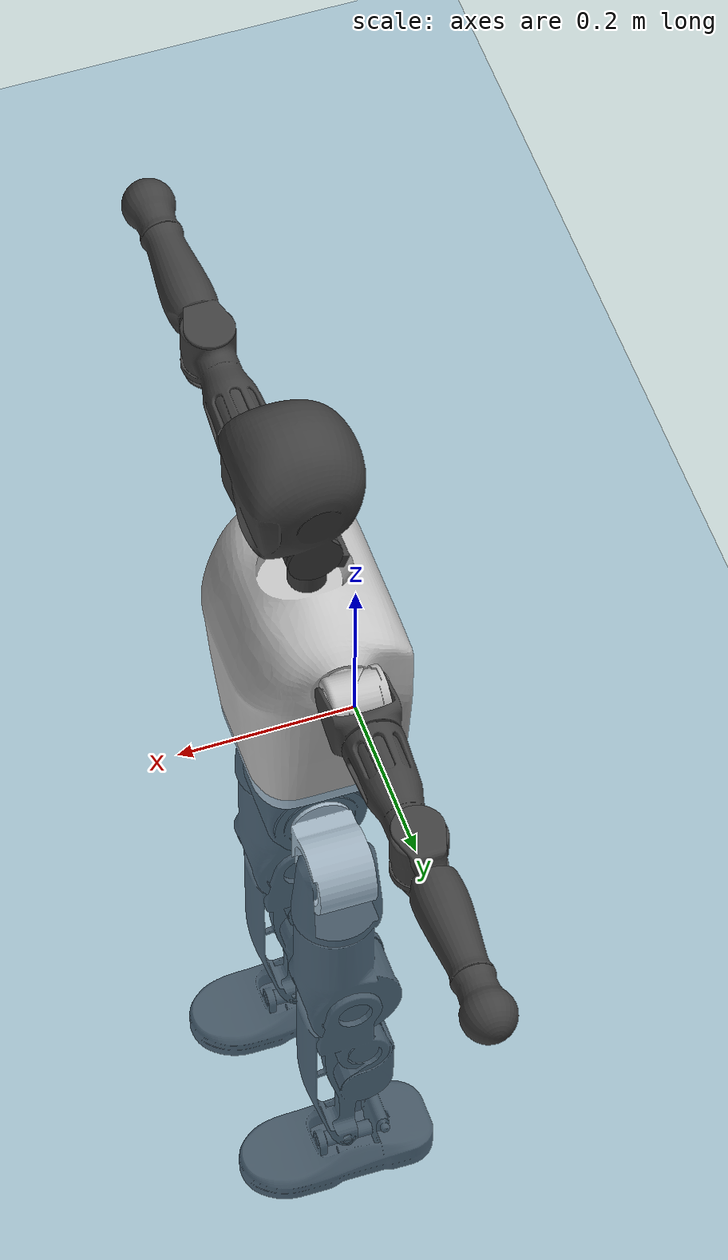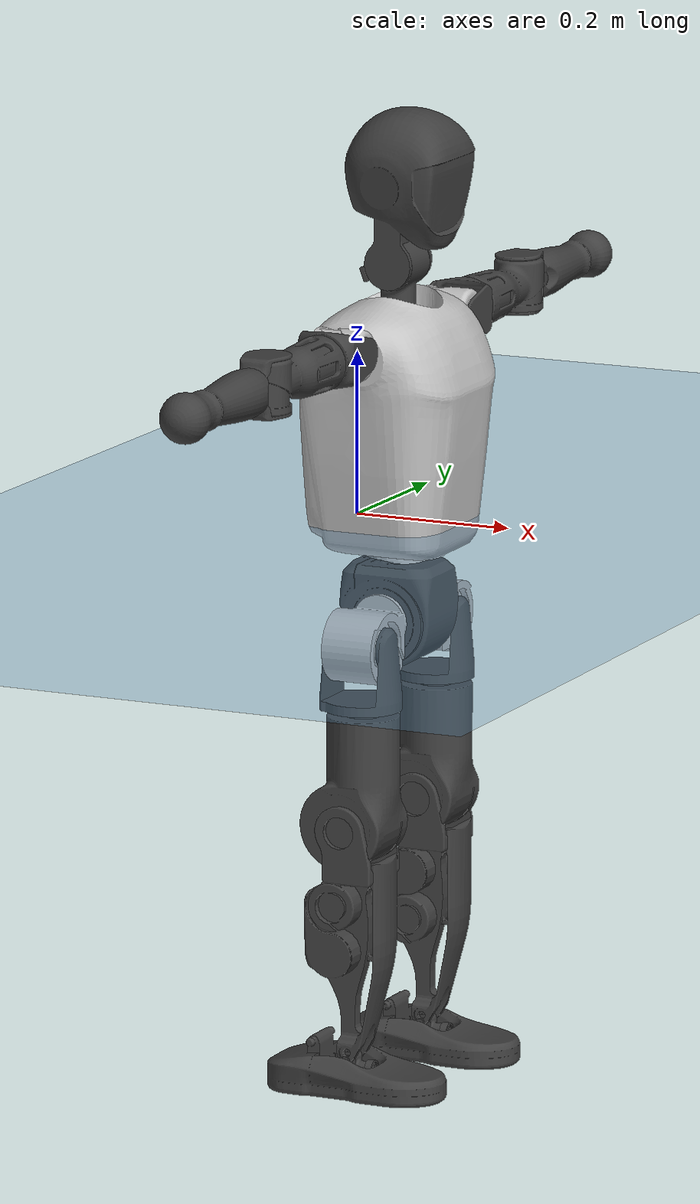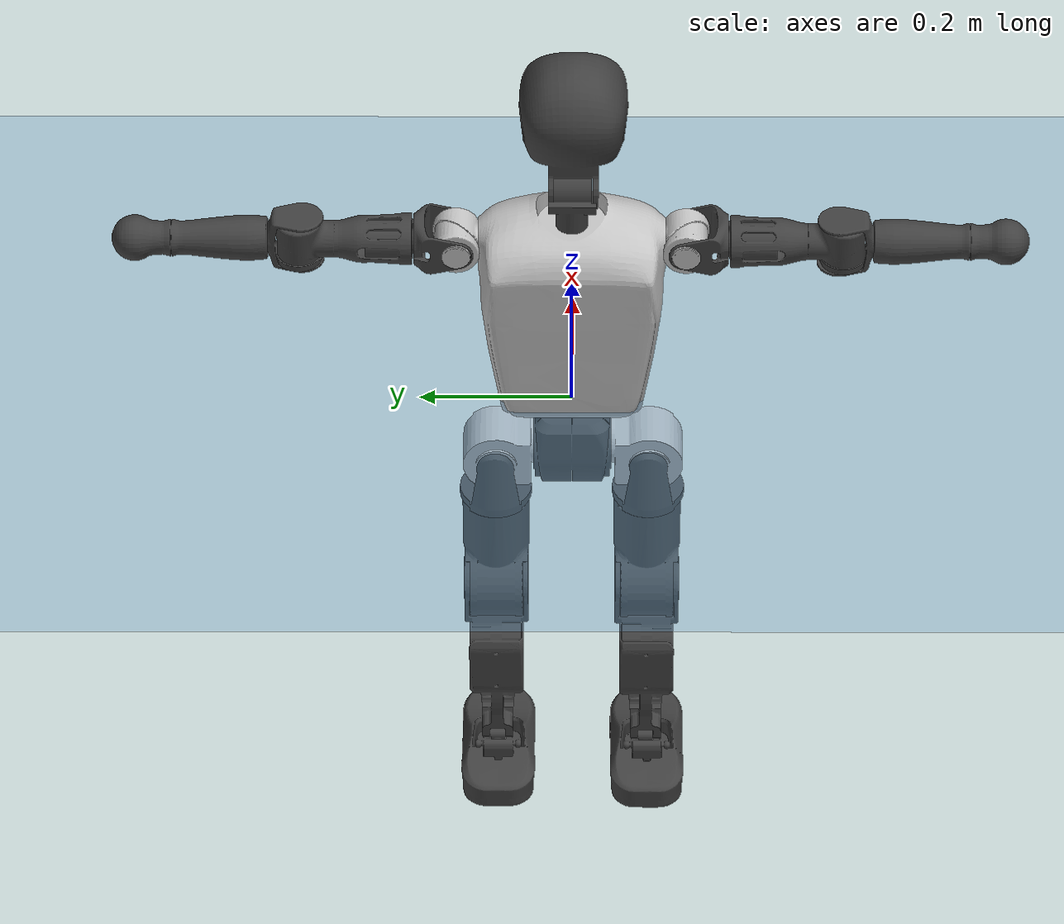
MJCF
<mujoco model="T1">
  <compiler angle="radian" assetdir="assets" balanceinertia="true" inertiafromgeom="false"/>

  <option timestep="0.005" density="1.2" viscosity="2e-05"/>

  <size nkey="1"/>

  <visual>
    <quality shadowsize="8192"/>
    <map shadowclip="0.5"/>
  </visual>

  <default>
    <default class="/">
      <joint armature="0.01" damping="0.01" frictionloss="0.1"/>
      <geom contype="0" conaffinity="0" group="1" solref="-1000 -80"/>
      <site size="0.01 0.005 0.005" group="5"/>
      <general forcelimited="true" biastype="affine" gainprm="25" biasprm="0 -25 -0.6"/>
      <default class="t1">
        <geom rgba="0.25 0.25 0.25 1"/>
        <default class="visual">
          <geom type="mesh" group="2"/>
        </default>
        <default class="collision">
          <geom group="3"/>
        </default>
        <default class="foot">
          <geom size="0.1115 0.05 0.015" type="box" condim="6" group="4" priority="1" solimp="0.015 1 0.015"/>
        </default>
        <default class="reward_collision_sphere">
          <geom group="5" rgba="1 0 0 1"/>
        </default>
      </default>
    </default>
  </default>

  <asset>
    <texture type="skybox" colorspace="auto" name="//unnamed_texture_0" builtin="gradient" rgb1="0.95 0.95 0.95" rgb2="0.95 0.95 0.95" width="100" height="600"/>
    <texture type="2d" colorspace="auto" name="texplane" builtin="checker" rgb1="0.345 0.575 0.748" rgb2="0.345 0.575 0.748" markrgb="1 1 1" width="512" height="512"/>
    <material name="MatPlane" class="/" texture="texplane" texuniform="true" texrepeat="2 2" specular="0.9"/>
    <mesh name="Trunk" class="/" file="Trunk.stl"/>
    <mesh name="H1" class="/" file="H1.stl"/>
    <mesh name="H2" class="/" file="H2.stl"/>
    <mesh name="AL1" class="/" file="AL1.stl"/>
    <mesh name="AL2" class="/" file="AL2.stl"/>
    <mesh name="AL3" class="/" file="AL3.stl"/>
    <mesh name="left_hand_link" class="/" file="left_hand_link.stl"/>
    <mesh name="AR1" class="/" file="AR1.stl"/>
    <mesh name="AR2" class="/" file="AR2.stl"/>
    <mesh name="AR3" class="/" file="AR3.stl"/>
    <mesh name="right_hand_link" class="/" file="right_hand_link.stl"/>
    <mesh name="Waist" class="/" file="Waist.stl"/>
    <mesh name="Hip_Pitch_Left" class="/" file="Hip_Pitch_Left.stl"/>
    <mesh name="Hip_Roll_Left" class="/" file="Hip_Roll_Left.stl"/>
    <mesh name="Hip_Yaw_Left" class="/" file="Hip_Yaw_Left.stl"/>
    <mesh name="Shank_Left" class="/" file="Shank_Left.stl"/>
    <mesh name="Ankle_Cross_Left" class="/" file="Ankle_Cross_Left.stl"/>
    <mesh name="left_foot_link" class="/" file="left_foot_link.stl"/>
    <mesh name="Hip_Pitch_Right" class="/" file="Hip_Pitch_Right.stl"/>
    <mesh name="Hip_Roll_Right" class="/" file="Hip_Roll_Right.stl"/>
    <mesh name="Hip_Yaw_Right" class="/" file="Hip_Yaw_Right.stl"/>
    <mesh name="Shank_Right" class="/" file="Shank_Right.stl"/>
    <mesh name="Ankle_Cross_Right" class="/" file="Ankle_Cross_Right.stl"/>
    <mesh name="right_foot_link" class="/" file="right_foot_link.stl"/>
  </asset>

  <worldbody>
    <geom name="floor" class="/" size="100 100 0.125" type="plane" group="0" material="MatPlane"/>
    <light name="toplight_shadow" class="/" pos="0 0 5" dir="0.0990148 0.0990148 -0.990148" type="directional" ambient="0.04 0.04 0.04" diffuse="0.55 0.55 0.55" specular="0.12 0.12 0.12"/>
    <light name="toplight_fill" class="/" pos="0 0 5" dir="0.0990148 0.0990148 -0.990148" type="directional" castshadow="false" ambient="0.04 0.04 0.04" diffuse="0.3 0.3 0.3" specular="0.08 0.08 0.08"/>
    <body name="trunk" childclass="t1" pos="5.31765e-05 0.000852068 -0.000253432" quat="1 0.000104372 0.000274775 -0.000116986">
      <inertial pos="0.0474668 -1.5154e-06 0.108698" quat="0.999974 0.000224284 -0.00682932 0.00215948" mass="10.3415" diaginertia="0.0468939 0.0644291 0.0672864"/>
      <joint name="//unnamed_joint_0" type="free" armature="0" damping="0" frictionloss="0"/>
      <geom name="//unnamed_geom_1" class="visual" rgba="0.76 0.76 0.76 1" mesh="Trunk"/>
      <geom name="//unnamed_geom_2" class="collision" size="0.0717803 0.095707 0.143561" pos="0.0522729 0 0.124384" type="box"/>
      <geom name="//unnamed_geom_3" class="reward_collision_sphere" size="0.110063" pos="0.0522729 0 0.103653"/>
      <geom name="//unnamed_geom_4" class="reward_collision_sphere" size="0.0143561" pos="0.0522729 0.0818944 0"/>
      <geom name="//unnamed_geom_5" class="reward_collision_sphere" size="0.0143561" pos="0.0522729 -0.0818944 0"/>
      <geom name="//unnamed_geom_6" class="reward_collision_sphere" size="0.0143561" pos="0.0522729 0.103091 0.186576"/>
      <geom name="//unnamed_geom_7" class="reward_collision_sphere" size="0.0143561" pos="0.0522729 -0.103091 0.186576"/>
      <site name="imu" pos="-0.00360244 0.000137331 0.00377687" size="0.0095707"/>
      <camera name="track" pos="0 -1.92693 0" quat="0.707107 0.707107 0 0" mode="trackcom"/>
      <camera name="ego_camera" pos="0.106288 0 0.435343" quat="-0.5 -0.5 0.5 0.5"/>
      <body name="H1" pos="0.0541348 -0.000371426 0.251136" quat="1 8.96882e-06 -8.21807e-06 -7.94112e-07">
        <inertial pos="-0.00104908 -0.00144529 0.059501" quat="0.763905 -0.013623 0.00245586 0.64518" mass="0.390822" diaginertia="0.000122966 0.000186359 0.000179239"/>
        <joint name="AAHead_yaw" pos="0 0 0" axis="-0.0012682 0.0023608 0.999996" range="-1.5853 1.56512" armature="0.00974946" damping="0.0101692" frictionloss="0.096498"/>
        <geom name="//unnamed_geom_8" class="visual" mesh="H1"/>
        <body name="H2" pos="0.000493274 -0.00143291 0.0637916" quat="1 0.000123571 -0.000160854 -7.52916e-06">
          <inertial pos="0.00568426 0.000872939 0.101364" quat="0.988678 0.104988 -0.0745711 -0.0770254" mass="0.546392" diaginertia="0.00101997 0.00157425 0.00205678"/>
          <joint name="Head_pitch" pos="0 0 0" axis="1.8572e-05 -1 0.000268764" range="-1.22263 0.342844" armature="0.00913594" damping="0.00547603" frictionloss="0.0970843"/>
          <geom name="//unnamed_geom_9" class="visual" mesh="H2"/>
          <geom name="//unnamed_geom_10" class="collision" size="0.0765656" pos="0.00871216 0 0.114018"/>
          <geom name="//unnamed_geom_11" class="reward_collision_sphere" size="0.0861363" pos="0.0174243 0 0.103653"/>
        </body>
      </body>
      <body name="AL1" pos="0.0514142 0.102852 0.226798" quat="1 -0.00041287 0.000427546 -4.53082e-05">
        <inertial pos="0.000244721 0.0429655 0.000223888" quat="0.504228 0.495752 -0.504114 0.495836" mass="0.469825" diaginertia="0.00069328 0.00107674 0.000354798"/>
        <joint name="Left_Shoulder_Pitch" pos="0 0 0" axis="0.000233108 0.999999 0.00131437" range="-3.29045 1.23323" armature="0.0095398" damping="0.00352621" frictionloss="0.0914755"/>
        <geom name="//unnamed_geom_12" class="visual" rgba="0.76 0.76 0.76 1" mesh="AL1"/>
        <body name="AL2" pos="0.000928805 0.0455324 5.35335e-05" quat="1 2.10574e-05 6.9173e-05 -7.4489e-05">
          <inertial pos="0.00372468 0.0366827 0.000545314" quat="0.486894 0.513357 -0.487086 0.512002" mass="0.138777" diaginertia="0.000198532 0.0002852 0.000211288"/>
          <joint name="Left_Shoulder_Roll" pos="0 0 0" axis="-1 -0.00053494 -0.000387729" range="-1.58825 1.73521" armature="0.00984318" damping="0.00440814" frictionloss="0.096148"/>
          <geom name="//unnamed_geom_13" class="visual" mesh="AL2"/>
          <body name="AL3" pos="0.00053684 0.0586655 -4.21553e-05" quat="1 2.23605e-05 2.75819e-05 1.67926e-05">
            <inertial pos="-0.000323856 0.0817707 -0.000385397" quat="0.704538 0.709656 -0.000484018 0.00367667" mass="0.896273" diaginertia="0.00648114 0.010671 0.000753191"/>
            <joint name="Left_Elbow_Pitch" pos="0 0 0" axis="-0.00322786 -0.999993 -0.00197262" stiffness="0.00292018" range="-2.28759 2.28034" armature="0.0101269" damping="0.00801368" frictionloss="0.0967323"/>
            <geom name="//unnamed_geom_14" class="visual" mesh="AL3"/>
            <geom name="//unnamed_geom_15" class="collision" size="0.0287121 0.0717803" pos="0 0.0481732 0" quat="0.707105 0.707108 0 0" type="cylinder"/>
            <geom name="//unnamed_geom_16" class="reward_collision_sphere" size="0.0344545"/>
            <body name="left_hand_link" pos="2.58677e-05 0.142707 0.00161333" quat="1 0.000216282 -5.13191e-05 -0.000153472">
              <inertial pos="-0.00065888 0.105004 0.000601343" quat="0.708725 0.705483 0.000211931 -0.00160617" mass="0.285735" diaginertia="0.00408682 0.00669418 0.000257233"/>
              <joint name="Left_Elbow_Yaw" pos="0 0 0" axis="0.00188533 -0.00375418 0.999991" range="-2.44016 -0.014654" armature="0.0093949" damping="0.00867681" frictionloss="0.0959748"/>
              <geom name="//unnamed_geom_17" class="visual" mesh="left_hand_link"/>
              <geom name="//unnamed_geom_18" class="collision" size="0.0287121 0.0837437" pos="0 0.12525 0" quat="0.707105 0.707108 0 0" type="cylinder"/>
              <geom name="//unnamed_geom_19" class="reward_collision_sphere" size="0.0478535"/>
              <geom name="//unnamed_geom_20" class="reward_collision_sphere" size="0.0334975" pos="0 0.105981 0"/>
              <geom name="//unnamed_geom_21" class="reward_collision_sphere" size="0.0334975" pos="0 0.207145 0"/>
            </body>
          </body>
        </body>
      </body>
      <body name="AR1" pos="0.0492325 -0.101483 0.227391" quat="1 -7.58757e-05 0.0005896 2.52781e-05">
        <inertial pos="-0.000194936 -0.0447726 -0.000504891" quat="0.501491 0.497823 -0.506617 0.493982" mass="0.46556" diaginertia="0.000694403 0.00108006 0.000348726"/>
        <joint name="Right_Shoulder_Pitch" pos="0 0 0" axis="0.00133432 -0.999998 -0.00177942" range="-1.22211 3.32692" armature="0.00951424" damping="0.00760735" frictionloss="0.0993914"/>
        <geom name="//unnamed_geom_22" class="visual" rgba="0.76 0.76 0.76 1" mesh="AR1"/>
        <body name="AR2" pos="0.000113344 -0.0452473 0.000859606" quat="1 0.000248873 6.18117e-05 3.4222e-05">
          <inertial pos="0.00413363 -0.0368612 0.000109971" quat="0.509176 0.490151 -0.511524 0.488708" mass="0.139898" diaginertia="0.000201203 0.000287648 0.000210258"/>
          <joint name="Right_Shoulder_Roll" pos="0 0 0" axis="-0.999976 -0.00688606 0.00065649" range="-1.74688 1.56588" armature="0.0096957" damping="0.00429876" frictionloss="0.101072"/>
          <geom name="//unnamed_geom_23" class="visual" mesh="AR2"/>
          <body name="AR3" pos="-0.00117354 -0.0587798 -0.00154156" quat="1 1.04935e-05 -5.25113e-06 2.53098e-05">
            <inertial pos="-0.000616673 -0.082526 0.000541558" quat="0.707751 0.706462 -0.000120388 -0.000248262" mass="0.894758" diaginertia="0.0064555 0.0105738 0.00074275"/>
            <joint name="Right_Elbow_Pitch" pos="0 0 0" axis="-9.50005e-05 1 -0.000489382" range="-2.27227 2.28654" armature="0.00942951" damping="0.00974935" frictionloss="0.0915511"/>
            <geom name="//unnamed_geom_24" class="visual" mesh="AR3"/>
            <geom name="//unnamed_geom_25" class="collision" size="0.0287121 0.0717803" pos="0 -0.0481732 0" quat="0.707105 0.707108 0 0" type="cylinder"/>
            <geom name="//unnamed_geom_26" class="reward_collision_sphere" size="0.0344545"/>
            <body name="right_hand_link" pos="-0.000162898 -0.141377 -3.38424e-05" quat="1 0.000264768 -8.60794e-05 3.9653e-06">
              <inertial pos="-0.000409576 -0.104702 0.00140794" quat="0.70634 0.707873 0.000237678 4.14712e-05" mass="0.288033" diaginertia="0.00413695 0.00679697 0.000259589"/>
              <joint name="Right_Elbow_Yaw" pos="0 0 0" axis="-0.00615544 -0.000637682 0.999981" range="0.00502992 2.41988" armature="0.00956261" damping="0.00270893" frictionloss="0.0925265"/>
              <geom name="//unnamed_geom_27" class="visual" mesh="right_hand_link"/>
              <geom name="//unnamed_geom_28" class="collision" size="0.0287121 0.0837437" pos="0 -0.12525 0" quat="0.707105 0.707108 0 0" type="cylinder"/>
              <geom name="//unnamed_geom_29" class="reward_collision_sphere" size="0.0478535"/>
              <geom name="//unnamed_geom_30" class="reward_collision_sphere" size="0.0334975" pos="0 -0.105981 0"/>
              <geom name="//unnamed_geom_31" class="reward_collision_sphere" size="0.0334975" pos="0 -0.207145 0"/>
            </body>
          </body>
        </body>
      </body>
      <body name="Waist" pos="0.0551376 -0.000814807 -0.1187" quat="1 -0.00011574 -6.84615e-05 7.68997e-05">
        <inertial pos="0.00177867 -0.000808183 0.00813565" quat="0.983657 0.000325997 -0.180031 0.00278215" mass="2.23509" diaginertia="0.00267033 0.00435096 0.0055985"/>
        <joint name="Waist" pos="0 0 0" axis="-0.00092195 -0.00120213 0.999999" stiffness="0.00189721" range="-1.56111 1.56878" armature="0.00945869" damping="0.00893997" frictionloss="0.0954353"/>
        <geom name="//unnamed_geom_32" class="visual" mesh="Waist"/>
        <body name="Hip_Pitch_Left" pos="0.00103519 0.100876 -0.000161784" quat="1 4.69601e-05 -0.000534827 -0.00039002">
          <inertial pos="0.000856518 -0.00642442 -0.0185338" quat="0.974941 0.221831 0.0166474 0.00215083" mass="0.884096" diaginertia="0.00090716 0.00121334 0.0014828"/>
          <joint name="Left_Hip_Pitch" pos="0 0 0" axis="-0.00771407 0.999969 0.00170233" range="-1.80412 1.58438" armature="0.00918546" damping="0.00905451" frictionloss="0.0964539"/>
          <geom name="//unnamed_geom_33" class="visual" rgba="0.76 0.76 0.76 1" mesh="Hip_Pitch_Left"/>
          <body name="Hip_Roll_Left" pos="0.000813809 0.00114326 -0.021375" quat="1 -0.000212307 0.000663354 0.000103595">
            <inertial pos="0.00154171 7.80289e-06 -0.0553036" quat="0.706977 -0.00583504 -0.0059517 0.707187" mass="0.331938" diaginertia="0.000867969 0.00124156 0.000608955"/>
            <joint name="Left_Hip_Roll" pos="0 0 0" axis="-0.999998 0.000968415 0.00149714" range="-1.58129 0.20041" armature="0.00997232" damping="0.00704698" frictionloss="0.0932903"/>
            <geom name="//unnamed_geom_34" class="visual" mesh="Hip_Roll_Left"/>
            <geom name="//unnamed_geom_35" class="reward_collision_sphere" size="0.0526389"/>
            <body name="Hip_Yaw_Left" pos="0.000590249 7.32514e-05 -0.0847393" quat="1 -2.66686e-05 -2.53335e-05 2.71323e-05">
              <inertial pos="-0.00640761 7.44615e-05 -0.0927351" quat="0.698167 -0.0332692 -0.0335839 0.714372" mass="1.90802" diaginertia="0.0128176 0.0208406 0.00309267"/>
              <joint name="Left_Hip_Yaw" pos="0 0 0" axis="0.000408036 1.30177e-05 -1" range="-0.992952 1.00521" armature="0.00955049" damping="0.00514318" frictionloss="0.0952148"/>
              <geom name="//unnamed_geom_36" class="visual" mesh="Hip_Yaw_Left"/>
              <geom name="//unnamed_geom_37" class="collision" size="0.0478535 0.0765656" type="cylinder"/>
              <body name="Shank_Left" pos="-0.0108118 0.000212201 -0.139138" quat="1 -1.7198e-05 -2.89967e-06 2.23937e-05">
                <inertial pos="-0.00484611 0.000887644 -0.128796" quat="0.997518 0.00192801 -0.0253612 0.0656553" mass="1.48246" diaginertia="0.0172278 0.0283545 0.0021896"/>
                <joint name="Left_Knee_Pitch" pos="0 0 0" axis="-0.000403717 0.999997 0.00229919" range="-0.00336772 2.35819" armature="0.00963567" damping="0.0120001" frictionloss="0.0939557"/>
                <geom name="//unnamed_geom_38" class="visual" mesh="Shank_Left"/>
                <geom name="//unnamed_geom_39" class="collision" size="0.0478535 0.0717803" pos="0 0 -0.124384" type="cylinder"/>
                <geom name="//unnamed_geom_40" class="reward_collision_sphere" size="0.0622096"/>
                <body name="Ankle_Cross_Left" pos="-0.00100841 -0.000586002 -0.289977" quat="1 -0.000177344 -6.89785e-06 -2.79529e-05">
                  <inertial pos="-0.00230294 -0.000824366 -0.00849156" quat="0.44574 0.55046 0.550299 0.442132" mass="0.0642522" diaginertia="1.45725e-05 2.13368e-05 1.34824e-05"/>
                  <joint name="Left_Ankle_Pitch" pos="0 0 0" axis="-0.000670361 0.999997 -0.00221074" stiffness="0.000586241" range="-0.862571 0.349491" armature="0.00982145" damping="0.0104512" frictionloss="0.0951283"/>
                  <geom name="//unnamed_geom_41" class="visual" mesh="Ankle_Cross_Left"/>
                  <body name="left_foot_link" pos="-0.000128579 -0.000475703 -0.0125662" quat="1 3.48687e-05 0.00012259 -8.56781e-05">
                    <inertial pos="-0.000100073 0.000306886 -0.00840566" quat="-0.00163494 0.620215 0.000251886 0.78443" mass="0.596789" diaginertia="0.00133946 0.0019823 0.00261726"/>
                    <joint name="Left_Ankle_Roll" pos="0 0 0" axis="-0.999995 0.00267945 -0.00153548" range="-0.445641 0.440749" armature="0.00953309" damping="0.0151616" frictionloss="0.0948843"/>
                    <geom name="//unnamed_geom_42" class="visual" mesh="left_foot_link"/>
                    <geom name="left_foot" class="foot" size="0.10921 0.0479871 0.0146959" pos="0.00871216 0 -0.015548"/>
                    <geom name="//unnamed_geom_44" class="reward_collision_sphere" size="0.0497677" pos="0.00871216 0 -0.015548"/>
                    <geom name="//unnamed_geom_45" class="reward_collision_sphere" size="0.0287121" pos="0.0827655 -0.0221597 -0.015548"/>
                    <geom name="//unnamed_geom_46" class="reward_collision_sphere" size="0.0287121" pos="-0.0609851 -0.0221597 -0.015548"/>
                    <site name="left_foot" class="foot" pos="0.00871216 0 -0.015548" size="0.0095707"/>
                  </body>
                </body>
              </body>
            </body>
          </body>
        </body>
        <body name="Hip_Pitch_Right" pos="-0.000329862 -0.102519 0.00069864" quat="1 0.00041543 0.000723233 8.50303e-05">
          <inertial pos="-2.80329e-05 0.00596567 -0.0184765" quat="0.974142 -0.225188 0.0174445 -0.0058115" mass="0.880097" diaginertia="0.000901537 0.00120325 0.00148898"/>
          <joint name="Right_Hip_Pitch" pos="0 0 0" axis="-0.00295101 -0.999995 -0.000758801" stiffness="0.000877248" range="-1.55648 1.79536" armature="0.00995808" damping="0.00655561" frictionloss="0.0991214"/>
          <geom name="//unnamed_geom_47" class="visual" rgba="0.76 0.76 0.76 1" mesh="Hip_Pitch_Right"/>
          <body name="Hip_Roll_Right" pos="-7.80337e-05 0.00125387 -0.0196278" quat="1 -3.27577e-05 2.64498e-05 0.00023595">
            <inertial pos="0.000771913 0.000719412 -0.056288" quat="0.70732 -0.00300257 -0.00437351 0.706873" mass="0.332915" diaginertia="0.000860672 0.00125766 0.000615604"/>
            <joint name="Right_Hip_Roll" pos="0 0 0" axis="-0.999993 0.00125616 0.00358961" range="-0.196942 1.5696" armature="0.00922285" damping="0.00920939" frictionloss="0.0966784"/>
            <geom name="//unnamed_geom_48" class="visual" mesh="Hip_Roll_Right"/>
            <geom name="//unnamed_geom_49" class="reward_collision_sphere" size="0.0526389"/>
            <body name="Hip_Yaw_Right" pos="0.000222258 0.000900309 -0.0849256" quat="1 8.99727e-05 5.91884e-05 -0.000136185">
              <inertial pos="-0.00682667 0.000400354 -0.0922127" quat="0.714686 -0.0318262 -0.0335979 0.697913" mass="1.86985" diaginertia="0.0128609 0.0208883 0.00311418"/>
              <joint name="Right_Hip_Yaw" pos="0 0 0" axis="0.000871195 0.00031244 -1" range="-1.01425 1.00898" armature="0.0090103" damping="0.00714293" frictionloss="0.0977585"/>
              <geom name="//unnamed_geom_50" class="visual" mesh="Hip_Yaw_Right"/>
              <geom name="//unnamed_geom_51" class="collision" size="0.0478535 0.0765656" type="cylinder"/>
              <body name="Shank_Right" pos="-0.013363 -0.000174106 -0.138933" quat="1 -3.45827e-05 -7.0596e-05 -0.000207748">
                <inertial pos="-0.00532491 -0.000817538 -0.126482" quat="0.999384 -7.03487e-05 -0.0217094 -0.0275607" mass="1.57786" diaginertia="0.0178598 0.0291067 0.00238702"/>
                <joint name="Right_Knee_Pitch" pos="0 0 0" axis="0.00624892 -0.99997 0.00458541" range="-2.34659 0.00150061" armature="0.00938121" damping="0.00513046" frictionloss="0.0975004"/>
                <geom name="//unnamed_geom_52" class="visual" mesh="Shank_Right"/>
                <geom name="//unnamed_geom_53" class="collision" size="0.0478535 0.0717803" pos="0 0 -0.124384" type="cylinder"/>
                <geom name="//unnamed_geom_54" class="reward_collision_sphere" size="0.0622096"/>
                <body name="Ankle_Cross_Right" pos="-0.000959491 -0.000667089 -0.289939" quat="1 0.000516144 -0.000152233 -0.000157357">
                  <inertial pos="-0.00287376 0.000404704 -0.00879777" quat="0.44284 0.548091 0.551488 0.446486" mass="0.0637904" diaginertia="1.46159e-05 2.1336e-05 1.36176e-05"/>
                  <joint name="Right_Ankle_Pitch" pos="0 0 0" axis="8.76387e-05 -1 0.000388528" range="-0.347402 0.863729" armature="0.00945389" damping="0.00694578" frictionloss="0.0940194"/>
                  <geom name="//unnamed_geom_55" class="visual" mesh="Ankle_Cross_Right"/>
                  <body name="right_foot_link" pos="-0.000494076 -0.00138575 -0.0115948" quat="1 9.11726e-06 -0.000143341 -2.70466e-05">
                    <inertial pos="9.33425e-05 -6.19673e-05 -0.00919168" quat="0.00105357 0.619701 -0.000587842 0.784837" mass="0.602024" diaginertia="0.00135272 0.0019821 0.00264488"/>
                    <joint name="Right_Ankle_Roll" pos="0 0 0" axis="-0.99999 0.00341116 0.00281984" range="-0.414915 0.438807" armature="0.00954372" damping="0.00920096" frictionloss="0.0992071"/>
                    <geom name="//unnamed_geom_56" class="visual" mesh="right_foot_link"/>
                    <geom name="right_foot" class="foot" size="0.101246 0.0487536 0.014844" pos="0.00871216 0 -0.015548"/>
                    <geom name="//unnamed_geom_58" class="reward_collision_sphere" size="0.0382828"/>
                    <geom name="//unnamed_geom_59" class="reward_collision_sphere" size="0.0287121" pos="0.00871216 0 -0.015548"/>
                    <geom name="//unnamed_geom_60" class="reward_collision_sphere" size="0.0287121" pos="0.0827655 0.0221597 -0.015548"/>
                    <geom name="//unnamed_geom_61" class="reward_collision_sphere" size="0.0287121" pos="-0.0609851 0.0221597 -0.015548"/>
                    <site name="right_foot" class="foot" pos="0.00871216 0 -0.015548" size="0.0095707"/>
                  </body>
                </body>
              </body>
            </body>
          </body>
        </body>
      </body>
    </body>
  </worldbody>

  <contact>
    <pair class="/" geom1="floor" geom2="left_foot" name="//unnamed_contact_0"/>
    <pair class="/" geom1="floor" geom2="right_foot" name="//unnamed_contact_1"/>
  </contact>

  <actuator>
    <general name="AAHead_yaw" class="/" joint="AAHead_yaw" forcerange="-6.93122 6.93122" gainprm="23.5208" biasprm="0 -23.5208 -0.558253"/>
    <general name="Head_pitch" class="/" joint="Head_pitch" forcerange="-6.50254 6.50254" gainprm="23.5208" biasprm="0 -23.5208 -0.558253"/>
    <general name="Left_Shoulder_Pitch" class="/" joint="Left_Shoulder_Pitch" forcerange="-16.7651 16.7651" gainprm="23.5208" biasprm="0 -23.5208 -0.558253"/>
    <general name="Left_Shoulder_Roll" class="/" joint="Left_Shoulder_Roll" forcerange="-17.0139 17.0139" gainprm="23.5208" biasprm="0 -23.5208 -0.558253"/>
    <general name="Left_Elbow_Pitch" class="/" joint="Left_Elbow_Pitch" forcerange="-17.3327 17.3327" gainprm="23.5208" biasprm="0 -23.5208 -0.558253"/>
    <general name="Left_Elbow_Yaw" class="/" joint="Left_Elbow_Yaw" forcerange="-17.2291 17.2291" gainprm="23.5208" biasprm="0 -23.5208 -0.558253"/>
    <general name="Right_Shoulder_Pitch" class="/" joint="Right_Shoulder_Pitch" forcerange="-17.3649 17.3649" gainprm="23.5208" biasprm="0 -23.5208 -0.558253"/>
    <general name="Right_Shoulder_Roll" class="/" joint="Right_Shoulder_Roll" forcerange="-17.306 17.306" gainprm="23.5208" biasprm="0 -23.5208 -0.558253"/>
    <general name="Right_Elbow_Pitch" class="/" joint="Right_Elbow_Pitch" forcerange="-17.5126 17.5126" gainprm="23.5208" biasprm="0 -23.5208 -0.558253"/>
    <general name="Right_Elbow_Yaw" class="/" joint="Right_Elbow_Yaw" forcerange="-16.905 16.905" gainprm="23.5208" biasprm="0 -23.5208 -0.558253"/>
    <general name="Waist" class="/" joint="Waist" forcerange="-28.9969 28.9969" gainprm="23.5208" biasprm="0 -23.5208 -0.558253"/>
    <general name="Left_Hip_Pitch" class="/" joint="Left_Hip_Pitch" forcerange="-43.0685 43.0685" gainprm="23.5208" biasprm="0 -23.5208 -0.558253"/>
    <general name="Left_Hip_Roll" class="/" joint="Left_Hip_Roll" forcerange="-28.7877 28.7877" gainprm="23.5208" biasprm="0 -23.5208 -0.558253"/>
    <general name="Left_Hip_Yaw" class="/" joint="Left_Hip_Yaw" forcerange="-28.2126 28.2126" gainprm="23.5208" biasprm="0 -23.5208 -0.558253"/>
    <general name="Left_Knee_Pitch" class="/" joint="Left_Knee_Pitch" forcerange="-57.479 57.479" gainprm="23.5208" biasprm="0 -23.5208 -0.558253"/>
    <general name="Left_Ankle_Pitch" class="/" joint="Left_Ankle_Pitch" forcerange="-19.7889 19.7889" gainprm="23.5208" biasprm="0 -23.5208 -0.558253"/>
    <general name="Left_Ankle_Roll" class="/" joint="Left_Ankle_Roll" forcerange="-13.7136 13.7136" gainprm="23.5208" biasprm="0 -23.5208 -0.558253"/>
    <general name="Right_Hip_Pitch" class="/" joint="Right_Hip_Pitch" forcerange="-42.9683 42.9683" gainprm="23.5208" biasprm="0 -23.5208 -0.558253"/>
    <general name="Right_Hip_Roll" class="/" joint="Right_Hip_Roll" forcerange="-29.0318 29.0318" gainprm="23.5208" biasprm="0 -23.5208 -0.558253"/>
    <general name="Right_Hip_Yaw" class="/" joint="Right_Hip_Yaw" forcerange="-29.3109 29.3109" gainprm="23.5208" biasprm="0 -23.5208 -0.558253"/>
    <general name="Right_Knee_Pitch" class="/" joint="Right_Knee_Pitch" forcerange="-57.643 57.643" gainprm="23.5208" biasprm="0 -23.5208 -0.558253"/>
    <general name="Right_Ankle_Pitch" class="/" joint="Right_Ankle_Pitch" forcerange="-19.2593 19.2593" gainprm="23.5208" biasprm="0 -23.5208 -0.558253"/>
    <general name="Right_Ankle_Roll" class="/" joint="Right_Ankle_Roll" forcerange="-14.3128 14.3128" gainprm="23.5208" biasprm="0 -23.5208 -0.558253"/>
  </actuator>

  <sensor>
    <gyro site="imu" name="imu_angular_velocity"/>
    <velocimeter site="imu" name="imu_linear_velocity"/>
    <framelinvel objtype="site" objname="left_foot" name="left_foot_global_linear_velocity"/>
    <framelinvel objtype="site" objname="right_foot" name="right_foot_global_linear_velocity"/>
  </sensor>

  <keyframe>
    <key name="home" qpos="0 0 0.6385 1 0 0 0 0 0 0 1.4 0 -0.4 0 -1.4 0 0.4 0 -0.4 0 0 0.8 -0.4 0 0.4 0 0 -0.8 0.4 0"/>
  </keyframe>
</mujoco>
